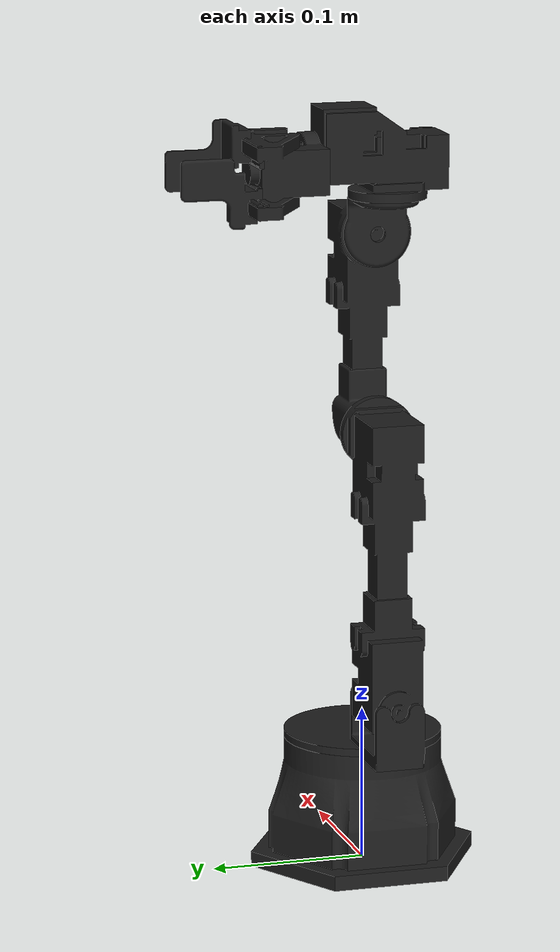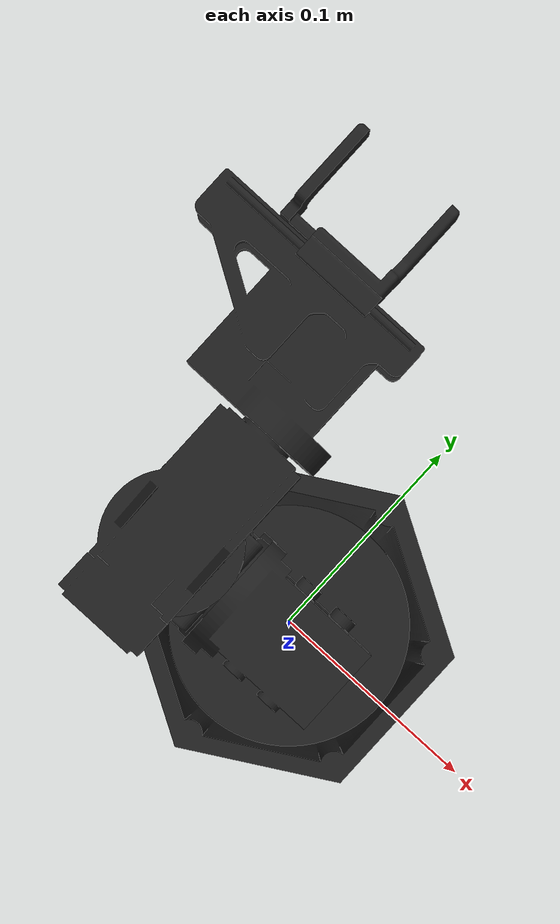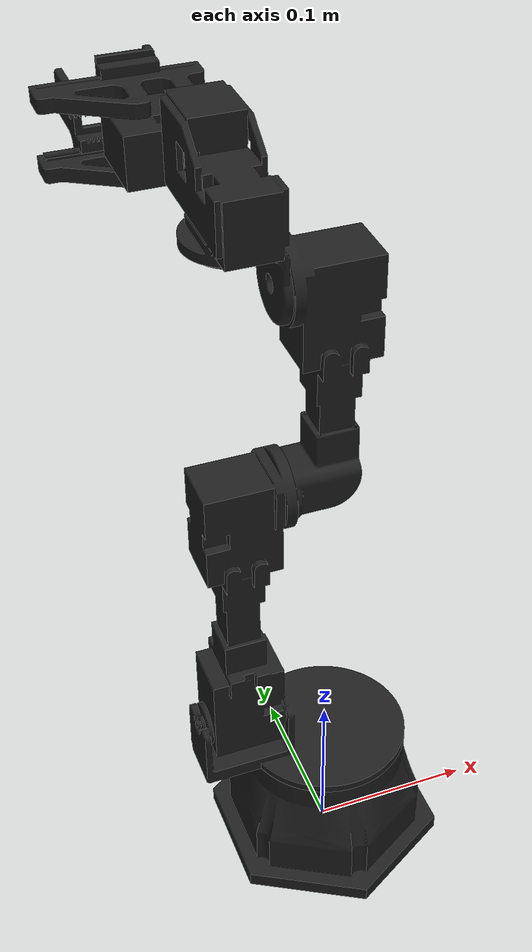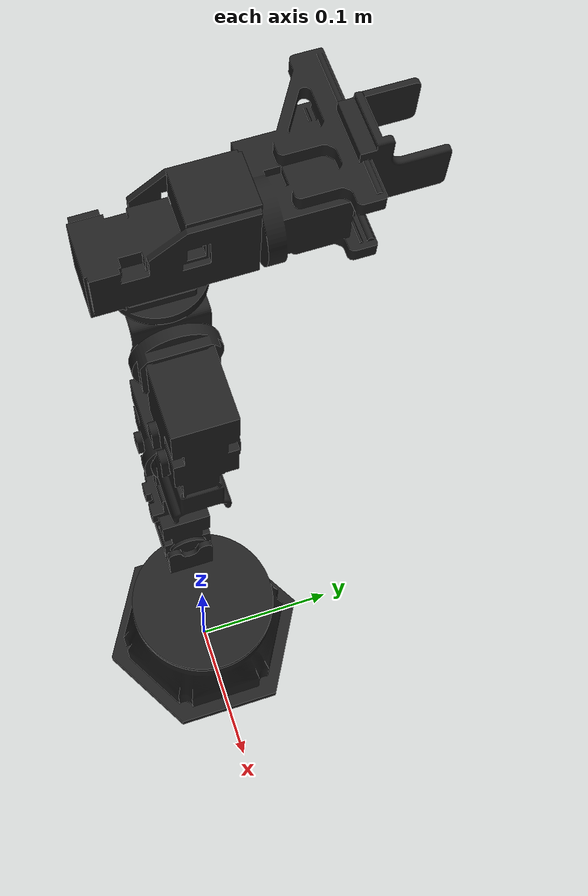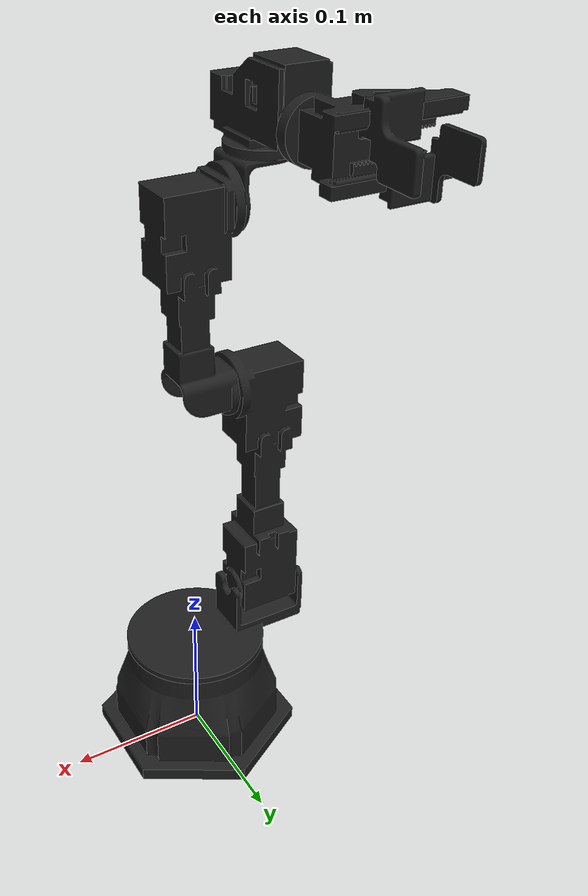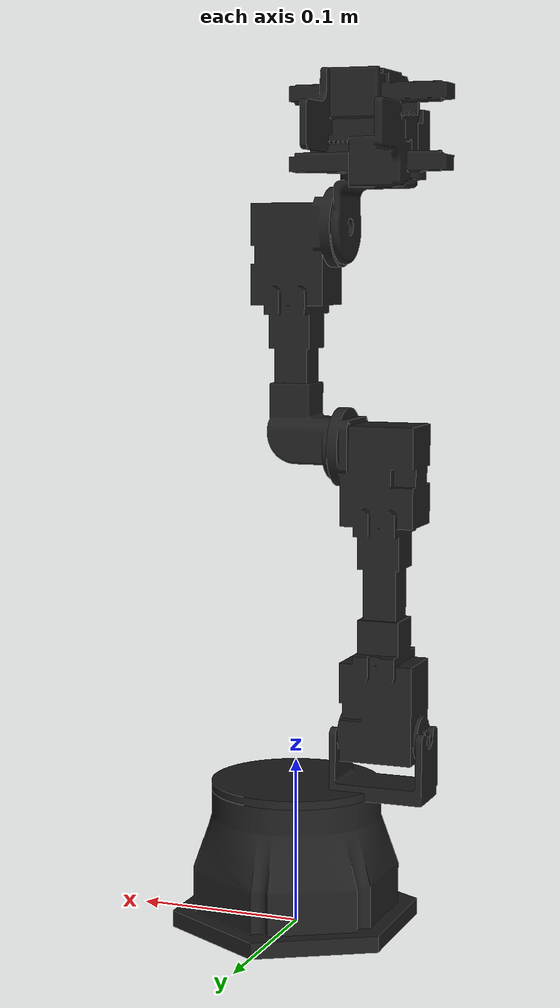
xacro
<?xml version="1.0"?>
<robot xmlns:xacro="http://www.ros.org/wiki/xacro" name="dx400">
    <xacro:arg name="initial_positions_file" default="initial_positions.yaml" />

    <!-- Import dx400 urdf file -->
    <xacro:include filename="$(find interbotix_xscobot_descriptions)/urdf/dx400.urdf.xacro" />

    <!-- Import control_xacro -->
    <xacro:include filename="dx400.ros2_control.xacro" />

    <xacro:dx400_ros2_control name="FakeSystem" initial_positions_file="$(arg initial_positions_file)"/>

</robot>

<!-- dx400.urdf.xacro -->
<robot name="dx400" xmlns:xacro="http://ros.org/wiki/xacro">

  <xacro:property name="robot_model"
    value="dx400"
    scope="global"/>
  <xacro:property name="dof"
    value="6"
    scope="global"/>

  <xacro:arg name="robot_name"            default="dx400"/>
  <xacro:arg name="base_link_frame"       default="base_link"/>
  <xacro:arg name="use_gripper"           default="true"/>
  <xacro:arg name="gripper_parent_link"   default="link_5"/>
  <xacro:arg name="gripper_parent_joint"  default="j6"/>
  <xacro:arg name="gripper_limit_min"     default="0.008"/>
  <xacro:arg name="gripper_limit_max"     default="0.008"/>
  <xacro:arg name="show_ar_tag"           default="false"/>
  <xacro:arg name="show_gripper_fingers"  default="true"/>
  <xacro:arg name="use_world_frame"       default="false"/>
  <xacro:arg name="external_urdf_loc"     default=""/>
  <xacro:arg name="load_gazebo_configs"   default="false"/>
  <xacro:arg name="hardware_type"         default="actual"/>

  <xacro:property name="mesh_directory"   value="package://interbotix_xscobot_descriptions/meshes/${robot_model}_meshes"/>
  <xacro:property name="urdf_loc"         value="$(arg external_urdf_loc)"/>
  <xacro:property name="hardware_type"    value="$(arg hardware_type)"/>
  <xacro:property name="pi_offset"        value="0.00001"/>
  <xacro:property name="j1_limit_lower"   value="-6.7"/>
  <xacro:property name="j1_limit_upper"   value="0.00"/>
  <xacro:property name="j2_limit_lower"   value="-1.88"/>
  <xacro:property name="j2_limit_upper"   value="1.88"/>
  <xacro:property name="j3_limit_lower"   value="-2.70"/>
  <xacro:property name="j3_limit_upper"   value="2.70"/>
  <xacro:property name="j4_limit_lower"   value="-3.66"/>
  <xacro:property name="j4_limit_upper"   value="1.55"/>
  <xacro:property name="j5_limit_lower"   value="-4.00"/>
  <xacro:property name="j5_limit_upper"   value="1.60"/>
  <xacro:property name="j6_limit_lower"   value="-5.00"/>
  <xacro:property name="j6_limit_upper"   value="1.60"/>

  <xacro:if value="$(arg load_gazebo_configs)">
    <xacro:include filename="$(find interbotix_common_sim)/textures/interbotix_texture.gazebo"/>
  </xacro:if>

  <material name="interbotix_black">
    <texture filename="package://interbotix_common_sim/media/materials/textures/interbotix_black.png"/>
  </material>

  <xacro:if value="$(arg use_world_frame)">
    <link name="world"/>
    <joint name="fixed" type="fixed">
      <parent
        link="world"/>
      <child
        link="$(arg robot_name)/$(arg base_link_frame)"/>
    </joint>
  </xacro:if>

  <link name="$(arg robot_name)/$(arg base_link_frame)">
    <visual>
      <origin
        rpy="0 0 0"
        xyz="0 0 0"/>
      <geometry>
        <mesh
          filename="${mesh_directory}/base_link.stl"
          scale="1 1 1"/>
      </geometry>
      <material name="interbotix_black"/>
    </visual>
    <inertial>
      <origin
        rpy="0 0 0"
        xyz="0 0 0"/>
      <mass value="0.1"/>
      <inertia
        ixx="4.18E-03"
        iyy="4.44E-03"
        izz="5.07E-03"
        ixy="1.24E-05"
        ixz="6.61E-05"
        iyz="-1.88E-06"/>
    </inertial>
    <collision>
      <origin
        rpy="0 0 0"
        xyz="0 0 0"/>
      <geometry>
        <mesh
          filename="${mesh_directory}/base_link.stl"
          scale="1 1 1"/>
      </geometry>
      <material name="interbotix_black"/>
    </collision>
  </link>

  <joint name="j1" type="revolute">
    <axis xyz="0 0 1"/>
    <limit
      effort="10"
      lower="${-pi + pi_offset}"
      upper="${pi - pi_offset}"
      velocity="${pi}"/>
    <origin
      rpy="0 0 ${pi/2}"
      xyz="0 0 0"/>
    <parent
      link="$(arg robot_name)/$(arg base_link_frame)"/>
    <child
      link="$(arg robot_name)/link_1"/>
    <dynamics
      friction="0.1"
      damping="0.1"/>
  </joint>

  <link name="$(arg robot_name)/link_1">
    <visual>
      <origin
        rpy="0 0 0"
        xyz="0 0 0"/>
      <geometry>
        <mesh
          filename="${mesh_directory}/link_1.stl"
          scale="1 1 1"/>
      </geometry>
      <material name="interbotix_black"/>
    </visual>
    <inertial>
      <origin
        rpy="0 0 0"
        xyz="0 0 0"/>
      <mass value="0.1"/>
      <inertia
        ixx="0.0"
        iyy="0.0"
        izz="0.0"
        ixy="0.0"
        ixz="0.0"
        iyz="0.0"/>
    </inertial>
    <collision>
      <origin
        rpy="0 0 0"
        xyz="0 0 0"/>
      <geometry>
        <mesh
          filename="${mesh_directory}/link_1.stl"
          scale="1 1 1"/>
      </geometry>
      <material name="interbotix_black"/>
    </collision>
  </link>

  <joint name="j2" type="revolute">
    <axis xyz="0 -1 0"/>
    <limit
      effort="10"
      lower="${-pi + pi_offset}"
      upper="${pi - pi_offset}"
      velocity="${pi}"/>
    <origin
      rpy="0 0 0"
      xyz="0 0.055 0.119787"/>
    <parent
      link="$(arg robot_name)/link_1"/>
    <child
      link="$(arg robot_name)/link_2"/>
    <dynamics
      friction="0.1"
      damping="0.1"/>
  </joint>

  <link name="$(arg robot_name)/link_2">
    <visual>
      <origin
        rpy="0 0 0"
        xyz="0 0 0"/>
      <geometry>
        <mesh
          filename="${mesh_directory}/link_2.stl"
          scale="1 1 1"/>
      </geometry>
      <material name="interbotix_black"/>
    </visual>
    <inertial>
      <origin
        rpy="0 0 0"
        xyz="0.0 0.0 0.0"/>
      <mass value="0.1"/>
      <inertia
        ixx="0.0"
        iyy="0.0"
        izz="0.0"
        ixy="-0.0"
        ixz="-0.0"
        iyz="0.0"/>
    </inertial>
    <collision>
      <origin
        rpy="0 0 0"
        xyz="0 0 0"/>
      <geometry>
        <mesh
          filename="${mesh_directory}/link_2.stl"
          scale="1 1 1"/>
      </geometry>
      <material name="interbotix_black"/>
    </collision>
  </link>

  <joint name="j3" type="revolute">
    <axis xyz="0 -1 0"/>
    <limit
      effort="10"
      lower="${-pi + pi_offset}"
      upper="${pi - pi_offset}"
      velocity="${pi}"/>
    <origin
      rpy="0 0 0"
      xyz="0 -0.0248 0.17"/>
    <parent
      link="$(arg robot_name)/link_2"/>
    <child
      link="$(arg robot_name)/link_3"/>
    <dynamics
      friction="0.1"
      damping="0.1"/>
  </joint>

  <link name="$(arg robot_name)/link_3">
    <visual>
      <origin
        rpy="0 0 ${pi}"
        xyz="0 0 0"/>
      <geometry>
        <mesh
          filename="${mesh_directory}/link_3.stl"
          scale="1 1 1"/>
      </geometry>
      <material name="interbotix_black"/>
    </visual>
    <inertial>
      <origin
        rpy="0 0 0"
        xyz="0.0 0.0 0.0"/>
      <mass value="0.1"/>
      <inertia
        ixx="0.0"
        iyy="0.0"
        izz="0.0"
        ixy="0.0"
        ixz="0"
        iyz="0"/>
    </inertial>
    <collision>
      <origin
        rpy="0 0 ${pi}"
        xyz="0 0 0"/>
      <geometry>
        <mesh
          filename="${mesh_directory}/link_3.stl"
          scale="1 1 1"/>
      </geometry>
      <material name="interbotix_black"/>
    </collision>
  </link>

  <joint name="j4" type="revolute">
    <axis xyz="0 1 0"/>
    <limit
      effort="10"
      lower="${-pi + pi_offset}"
      upper="${pi - pi_offset}"
      velocity="${pi}"/>
    <origin
      rpy="0 0 0"
      xyz="0.0001 -0.0019 0.127"/>
    <parent
      link="$(arg robot_name)/link_3"/>
    <child
      link="$(arg robot_name)/link_4"/>
    <dynamics
      friction="0.1"
      damping="0.1"/>
  </joint>

  <link name="$(arg robot_name)/link_4">
    <visual>
      <origin
        rpy="0 0 0"
        xyz="0 0 0"/>
      <geometry>
        <mesh
          filename="${mesh_directory}/link_4.stl"
          scale="1 1 1"/>
      </geometry>
      <material name="interbotix_black"/>
    </visual>
    <inertial>
      <origin
        rpy="0 0 0"
        xyz="0.0 0.0 0"/>
      <mass value="0.1"/>
      <inertia
        ixx="0.0"
        iyy="0.0"
        izz="0.0"
        ixy="0.0"
        ixz="0"
        iyz="0"/>
    </inertial>
    <collision>
      <origin
        rpy="0 0 0"
        xyz="0 0 0"/>
      <geometry>
        <mesh
          filename="${mesh_directory}/link_4.stl"
          scale="1 1 1"/>
      </geometry>
      <material name="interbotix_black"/>
    </collision>
  </link>

 <joint name="j5" type="revolute">
    <axis xyz="0 0 -1"/>
    <limit
      effort="10"
      lower="${-pi + pi_offset}"
      upper="${pi - pi_offset}"
      velocity="${pi}"/>
    <origin
      rpy="0 0 0"
      xyz="0 0.0244 0.02671"/>
    <parent
      link="$(arg robot_name)/link_4"/>
    <child
      link="$(arg robot_name)/link_5"/>
    <dynamics
      friction="0.1"
      damping="0.1"/>
  </joint>

  <link name="$(arg robot_name)/link_5">
    <visual>
      <origin
        rpy="0 0 0"
        xyz="0 0 0"/>
      <geometry>
        <mesh
          filename="${mesh_directory}/link_5.stl"
          scale="1 1 1"/>
      </geometry>
      <material name="interbotix_black"/>
    </visual>
    <inertial>
      <origin
        rpy="0 0 0"
        xyz="0.0 -0.0 0.0"/>
      <mass value="0.1"/>
      <inertia
        ixx="0.0"
        iyy="0.0"
        izz="0.0"
        ixy="0.0"
        ixz="0.0"
        iyz="0.0"/>
    </inertial>
    <collision>
      <origin
        rpy="0 0 0"
        xyz="0 0 0"/>
      <geometry>
        <mesh
          filename="${mesh_directory}/link_5.stl"
          scale="1 1 1"/>
      </geometry>
      <material name="interbotix_black"/>
    </collision>
  </link>

  <joint name="j6" type="revolute">
    <axis xyz="1 0 0"/>
    <limit
      effort="1"
      lower="${-pi + pi_offset}"
      upper="${pi - pi_offset}"
      velocity="${pi}"/>
    <origin
      rpy="${pi/2} 0 0"
      xyz="0.04725 0 0.02305"/>
    <parent
      link="$(arg robot_name)/link_5"/>
    <child
      link="$(arg robot_name)/gripper_link"/>
    <dynamics
      friction="0.1"
      damping="0.1"/>
  </joint>

  <link name="$(arg robot_name)/gripper_link">
    <visual>
      <origin
        rpy="0 0 0"
        xyz="0 0 0"/>
      <geometry>
        <mesh
          filename="${mesh_directory}/gripper_link.stl"
          scale="1 1 1"/>
      </geometry>
      <material name="interbotix_black"/>
    </visual>
    <inertial>
      <origin
        rpy="0 0 0"
        xyz="0.0216310000 0.0000002516 0.0114100000"/>
      <mass value="0.072885"/>
      <inertia
        ixx="0.0000253700"
        iyy="0.0000183600"
        izz="0.0000167400"
        ixy="0.0000000000"
        ixz="0.0000000000"
        iyz="0.0000004340"/>
    </inertial>
    <collision>
      <origin
        rpy="0 0 0"
        xyz="0 0 0"/>
      <geometry>
        <mesh
          filename="${mesh_directory}/gripper_link.stl"
          scale="1 1 1"/>
      </geometry>
      <material name="interbotix_black"/>
    </collision>
  </link>

  <joint name="gripper" type="revolute">
    <axis xyz="1 0 0"/>
    <limit
      effort="1"
      lower="-3.9"
      upper="3.9"
      velocity="${pi/2}"/>
    <origin
      rpy="${pi} 0 0"
      xyz="0.046501 0 -0.024"/>
    <parent
      link="$(arg robot_name)/gripper_link"/>
    <child
      link="$(arg robot_name)/gripper_pinion_link"/>
  </joint>

  <link name="$(arg robot_name)/gripper_pinion_link">
    <inertial>
      <origin
        rpy="0 0 0"
        xyz="0 0 0"/>
      <mass value="0"/>
      <inertia
        ixx="0"
        iyy="0"
        izz="0"
        ixy="0"
        ixz="0"
        iyz="0"/>
    </inertial>
  </link>

  <joint name="fingers_joint" type="fixed">
    <origin
      rpy="0 0 0"
      xyz="0.046501 0 -0.024"/>
    <parent
      link="$(arg robot_name)/gripper_link"/>
    <child
      link="$(arg robot_name)/fingers_link"/>
  </joint>

  <link name="$(arg robot_name)/fingers_link">
    <inertial>
      <origin
        rpy="0 0 0"
        xyz="0 0 0"/>
      <mass value="0"/>
      <inertia
        ixx="0"
        iyy="0"
        izz="0"
        ixy="0"
        ixz="0"
        iyz="0"/>
    </inertial>
  </link>

  <joint name="ee_gripper" type="fixed">
    <axis xyz="1 0 0"/>
    <origin
      rpy="0 0 0"
      xyz="0.03 0 0"/>
    <parent
      link="$(arg robot_name)/fingers_link"/>
    <child
      link="$(arg robot_name)/ee_gripper_link"/>
  </joint>

  <link name="$(arg robot_name)/ee_gripper_link">
    <inertial>
      <mass value="0.001"/>
      <inertia
        ixx="0.001"
        iyy="0.001"
        izz="0.001"
        ixy="0"
        ixz="0"
        iyz="0"/>
    </inertial>
  </link>

  <joint name="left_finger" type="prismatic">
    <axis xyz="0 0 1"/>
    <limit
      effort="5"
      lower="0.001"
      upper="0.035"
      velocity="1.0"/>
    <origin
      rpy="0 0 0"
      xyz="0 0.01755 0"/>
    <parent
      link="$(arg robot_name)/fingers_link"/>
    <child
      link="$(arg robot_name)/left_finger_link"/>
    <dynamics
      friction="0.1"
      damping="0.1"/>
  </joint>

  <link name="$(arg robot_name)/left_finger_link">
    <visual>
      <origin
        rpy="0 0 0"
        xyz="0 0 0"/>
      <geometry>
        <mesh
          filename="${mesh_directory}/gripper_finger.stl"
          scale="1 1 1"/>
      </geometry>
      <material name="interbotix_black"/>
    </visual>
    <inertial>
      <origin
        rpy="0 0 0"
        xyz="0 0 0"/>
      <mass value="0"/>
      <inertia
        ixx="0"
        iyy="0"
        izz="0"
        ixy="0"
        ixz="0"
        iyz="0"/>
    </inertial>
    <collision>
      <origin
        rpy="0 0 0"
        xyz="0 0 0"/>
      <geometry>
        <mesh
          filename="${mesh_directory}/gripper_finger.stl"
          scale="1 1 1"/>
      </geometry>
      <material name="interbotix_black"/>
    </collision>
  </link>

  <joint name="right_finger" type="prismatic">
    <axis xyz="0 0 1"/>
    <limit
      effort="5"
      lower="-0.035"
      upper="-0.001"
      velocity="1.0"/>
    <origin
      rpy="0 0 0"
      xyz="0 -0.01755 0"/>
    <parent
      link="$(arg robot_name)/fingers_link"/>
    <child
      link="$(arg robot_name)/right_finger_link"/>
    <dynamics
      friction="0.1"
      damping="0.1"/>
    <xacro:if value="${hardware_type != 'gz_classic'}">
      <mimic
        joint="left_finger"
        multiplier="-1"
        offset="0"/>
    </xacro:if>
  </joint>

  <link name="$(arg robot_name)/right_finger_link">
    <visual>
      <origin
        rpy="${pi} 0 0"
        xyz="0 0 0"/>
      <geometry>
        <mesh
          filename="${mesh_directory}/gripper_finger.stl"
          scale="1 1 1"/>
      </geometry>
      <material name="interbotix_black"/>
    </visual>
    <inertial>
      <origin
        rpy="0 0 0"
        xyz="0 0 0"/>
      <mass value="0"/>
      <inertia
        ixx="0"
        iyy="0"
        izz="0"
        ixy="0"
        ixz="0"
        iyz="0"/>
    </inertial>
    <collision>
      <origin
        rpy="${pi} 0 0"
        xyz="0 0 0"/>
      <geometry>
        <mesh
          filename="${mesh_directory}/gripper_finger.stl"
          scale="1 1 1"/>
      </geometry>
      <material name="interbotix_black"/>
    </collision>
  </link>

  <!-- If the AR tag is being used, then add the AR tag mount -->

  <xacro:if value="$(arg show_ar_tag)">
    <xacro:include filename="$(find interbotix_xscobot_descriptions)/urdf/ar_tag.urdf.xacro"/>
  </xacro:if>

  <xacro:if value="${urdf_loc != ''}">
    <xacro:include filename="${urdf_loc}"/>
  </xacro:if>

  <xacro:include filename="$(find interbotix_xscobot_descriptions)/urdf/control.urdf.xacro"/>
</robot>
